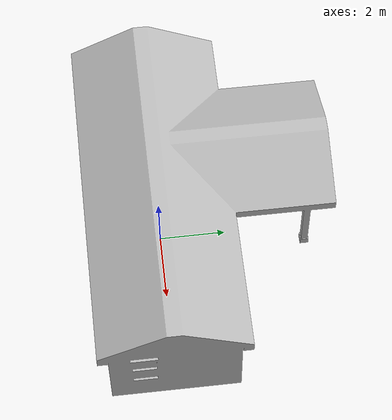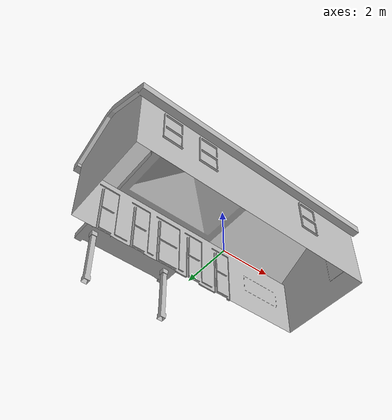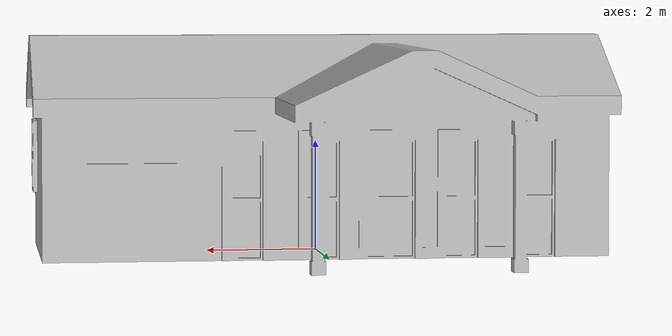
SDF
<?xml version="1.0" ?>
<sdf version="1.6">
  <model name="post_office">
    <static>true</static>
    <link name="link">
      <collision name="collision">
        <geometry>
          <mesh>
            <uri>model://post_office/meshes/post_office.dae</uri>
          </mesh>
        </geometry>
      </collision>
      <visual name="visual">
        <geometry>
          <mesh>
            <uri>model://post_office/meshes/post_office.dae</uri>
          </mesh>
        </geometry>
      </visual>
    </link>
  </model>
</sdf>
